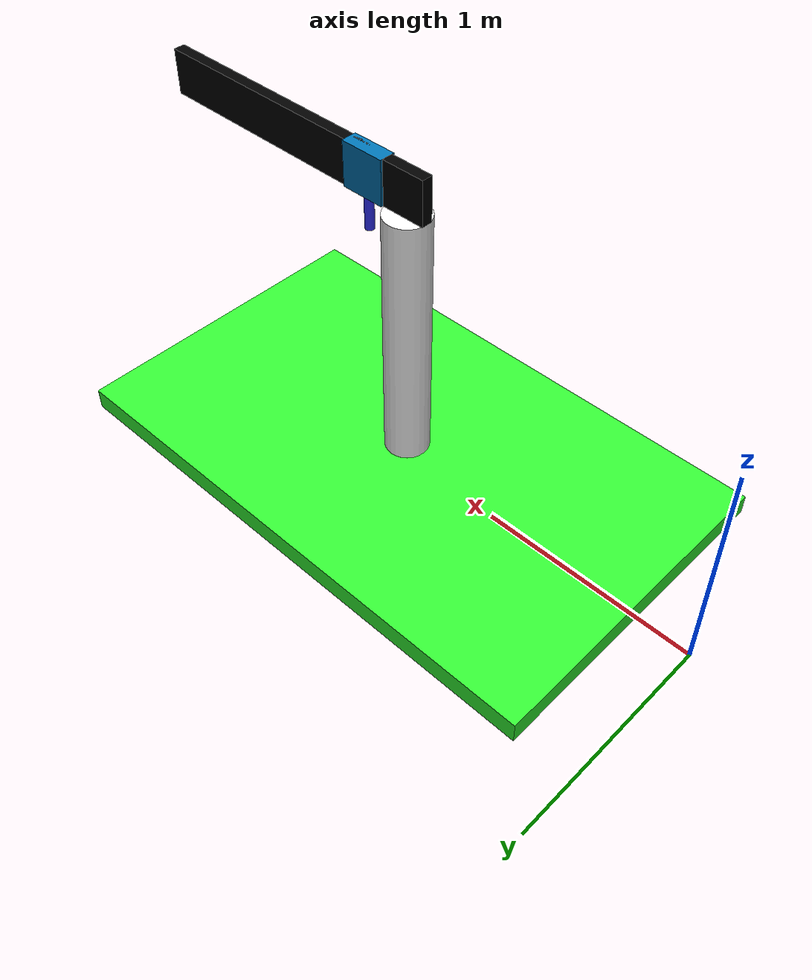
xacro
<?xml version="1.0"?>
<robot xmlns:xacro="http://www.ros.org/wiki/xacro"  name="rp">
    <!-- This first link called "world" is empty -->
    <link name="world"></link>

    <!-- A simple fixed joint from our empty world link, to our base. -->
    <!-- The base origin is offset from the world origin. -->
    <joint name="base_joint" type="fixed">
        <origin xyz="1.5 0 0" rpy="0 0 0"/>
        <parent link="world"/>
        <child link="base_link"/>
    </joint>

    <!-- base_link is a large rectangular plate. Some things to note: -->
    <!-- - We set the visual origin Z to half the box height, so that the link origin sits at the bottom of the box -->
    <!-- - We set the collision to be identical to the visual -->
    <!-- - We specified the colour manually (but still need to enter a name) -->
    <!-- - We specified all the inertial parameters manually -->
    <link name="base_link">
        <visual>
            <origin xyz="0 0 0.05" rpy="0 0 0"/>
            <geometry>
                <box size="2.5 1.5 0.1" />
            </geometry>
            <material name="green">
                <color rgba="0.2 1 0.2 1"/>
            </material>
        </visual>
        <collision>
            <origin xyz="0 0 0.05" rpy="0 0 0"/>
            <geometry>
                <box size="2.5 1.5 0.1" />
            </geometry>
        </collision>
        <inertial>
            <origin xyz="0 0 0.05" rpy="0 0 0"/>
            <mass value="12" />
            <inertia ixx="2.26" ixy="0.0" ixz="0.0" iyy="6.26" iyz="0.0" izz="8.5" />
        </inertial>
    </link>

    <joint name="base_arm_joint" type="revolute">
        <origin xyz="0 0 0.7 " rpy="0 0 0"/>
        <parent link="base_link"/>
        <child link="arm_link"/>
        <axis xyz="0 0 -1"/>
        <limit lower="0" upper="6.28" velocity="100" effort="100"/>
    </joint>

    <link name="arm_link">
        <visual>
            <origin xyz="0 0 0" rpy="0 0 0"/>
            <geometry>
                <cylinder radius="0.1" length="1.2" />
            </geometry>
            <material name="white">
                <color rgba="1 1 1 1"/>
            </material>
        </visual>
        <collision>
            <origin xyz="0 0 0" rpy="0 0 0"/>
            <geometry>
                <cylinder radius="0.1" length="1.2" />
            </geometry>
        </collision>
    </link>

    <joint name="arm_slider_rod_joint" type="fixed">
        <origin xyz="0.6 0 0.7" rpy="0 0 0"/>
        <parent link="arm_link"/>
        <child link="rod_link"/>
    </joint>

    <link name="rod_link">
        <visual>
            <origin xyz="0 0 0" rpy="0 0 0"/>
            <geometry>
                <box size="1.4 0.05 0.2" />
            </geometry>
            <material name="black">
                <color rgba="0 0 0 1"/>
            </material>
        </visual>
        <collision>
            <origin xyz="0 0 0" rpy="0 0 0"/>
            <geometry>
                <box size="1.4 0.05 0.2" />
            </geometry>
        </collision>

    </link>

    <joint name="slider_joint" type="prismatic">
        <origin xyz="-0.4 0 0" rpy="0 0 0"/>
        <parent link="rod_link"/>
        <child link="slider_link"/>
        <axis xyz="1 0 0"/>
        <limit lower="0" upper="1.0" velocity="100" effort="100"/>
    </joint>

   <link name="slider_link">
        <visual>
            <origin xyz="0 0 0" rpy="0 0 0"/>
            <geometry>
                <box size="0.2 0.07 0.2" />
            </geometry>
        </visual>
        <collision>
            <origin xyz="0 0 0" rpy="0 0 0"/>
            <geometry>
                <box size="0.2 0.07 0.2" />
            </geometry>
        </collision>
    </link>

    <joint name="slider_EE_joint" type="fixed">
        <origin xyz="0 0 -0.18" rpy="0 0 0"/>
        <parent link="slider_link"/>
        <child link="end_effector"/>
    </joint>

    <link name="end_effector">
        <visual>
            <origin xyz="0 0 0" rpy="0 0 0"/>
            <geometry>
                <cylinder radius="0.02" length="0.16" />
            </geometry>
            <material name="blue">
                <color rgba="0.2 0.2 1 1"/>
            </material>
        </visual>
        <collision>
            <origin xyz="0 0 0" rpy="0 0 0"/>
            <geometry>
                <cylinder radius="0.02" length="0.16" />
            </geometry>
        </collision>
    </link>
</robot>
